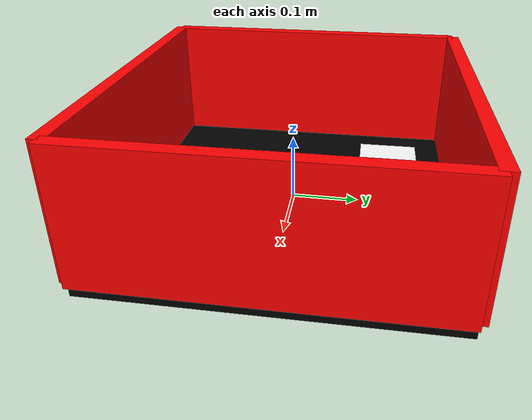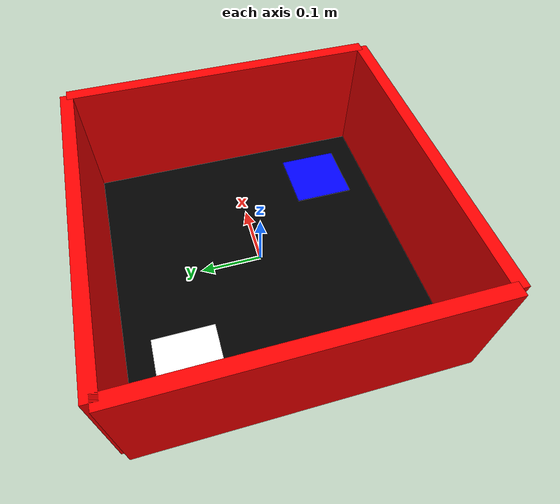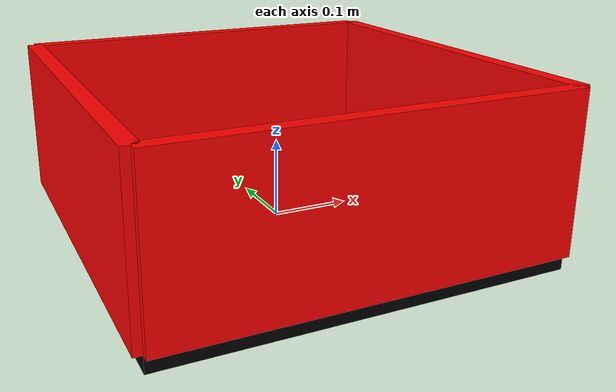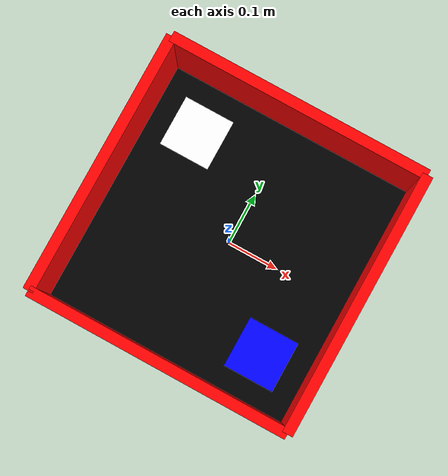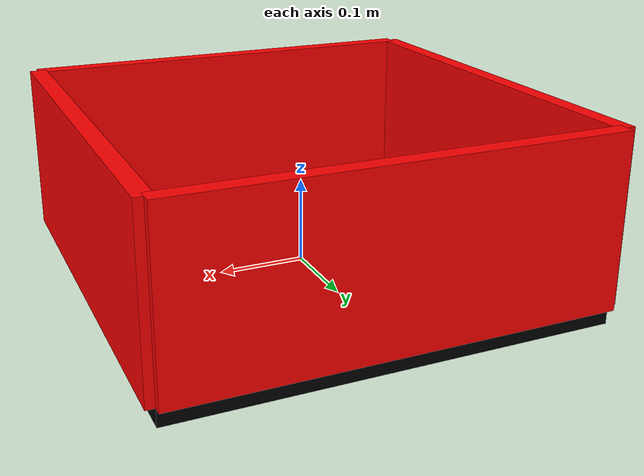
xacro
<?xml version="1.0"?>
<robot xmlns:xacro="http://www.ros.org/wiki/xacro" name="arena_go_forward">
	<!--
	* This is a simple arena for testing the GoForward behavior.
	* It consists of a floor, a start pad, and an end pad.
	* The robot should start on the start pad and move forward to the end pad.
	-->

	<!-- Materials -->
	<material name="white">
		<color rgba="1 1 1 1"/>
	</material>
	<material name="black">
		<color rgba="0 0 0 1"/>
	</material>
	<material name="green">
		<color rgba="0 1 0 1"/>
	</material>
	<material name="blue">
		<color rgba="0 0 1 1"/>
	</material>
	<material name="red">
		<color rgba="1 0 0 1"/>
	</material>

	<!-- Properties -->
	<xacro:property name="floor_x" value="0.5" />
	<xacro:property name="floor_y" value="0.5" />
	<xacro:property name="floor_lateral_friction" value="10.0" />
	<xacro:property name="pad_size" value="0.1 0.1 0.001" />
	<xacro:macro name="arena_wall" params="name x y size_x size_y">
		<visual>
			<origin xyz="${x} ${y} 0.1" rpy="0 0 0"/>
			<geometry>
				<box size="${size_x} ${size_y} 0.2"/>
			</geometry>
			<material name="red"/>
		</visual>
		<collision>
			<origin xyz="${x} ${y} 0.1" rpy="0 0 0"/>
			<geometry>
				<box size="${size_x} ${size_y} 0.2"/>
			</geometry>
		</collision>
	</xacro:macro>

	<!-- Floor -->
	<link name="floor">
		<inertial>
			<mass value="0"/>
			<inertia ixx="0" ixy="0" ixz="0" iyy="0" iyz="0" izz="0"/>
		</inertial>
		<visual>
			<origin xyz="0 0 -0.01"/>
			<geometry>
				<box size="${floor_x} ${floor_x} 0.02"/>
			</geometry>
			<material name="black"/>
		</visual>
		<collision>
			<origin xyz="0 0 -0.01"/>
			<geometry>
				<box size="${floor_x} ${floor_x} 0.02"/>
			</geometry>
		</collision>
		<contact>
			<lateral_friction value="${floor_lateral_friction}"/>
		</contact>
	</link>

	<!-- Start Pad -->
	<link name="start_pad">
		<inertial>
			<mass value="0.1"/>
			<inertia ixx="0.001" ixy="0" ixz="0" iyy="0.001" iyz="0" izz="0.001"/>
		</inertial>
		<visual>
			<geometry>
				<box size="${pad_size}"/>
			</geometry>
			<material name="white"/>
		</visual>
	</link>
	<joint name="start_joint" type="fixed">
		<parent link="floor"/>
		<child link="start_pad"/>
		<origin xyz="${-(floor_x/2 - 0.1)} ${(floor_y/2 - 0.1)} 0.001"/>
	</joint>

	<!-- End Pad -->
	<link name="end_pad">
		<inertial>
			<mass value="0.1"/>
			<inertia ixx="0.001" ixy="0" ixz="0" iyy="0.001" iyz="0" izz="0.001"/>
		</inertial>
		<visual>
			<geometry>
				<box size="${pad_size}"/>
			</geometry>
			<material name="blue"/>
		</visual>
	</link>
	<joint name="end_joint" type="fixed">
		<parent link="floor"/>
		<child link="end_pad"/>
		<origin xyz="${(floor_x/2 - 0.1)} ${-(floor_y/2 - 0.1)} 0.001"/>
	</joint>

	<!-- Walls -->
	<link name="walls">
		<inertial>
			<mass value="0"/>
			<inertia ixx="0" ixy="0" ixz="0" iyy="0" iyz="0" izz="0"/>
		</inertial>

		<xacro:arena_wall name="north" x="0" y="${floor_y/2}" size_x="${floor_x}" size_y="0.02" />

		<xacro:arena_wall name="south" x="0" y="${-floor_y/2}" size_x="${floor_x}" size_y="0.02" />

		<xacro:arena_wall name="east" x="${floor_x/2}" y="0" size_x="0.02" size_y="${floor_y}" />

		<xacro:arena_wall name="west" x="${-floor_x/2}" y="0" size_x="0.02" size_y="${floor_y}" />
	</link>

	<joint name="walls_joint" type="fixed">
		<parent link="floor"/>
		<child link="walls"/>
	</joint>

</robot>
